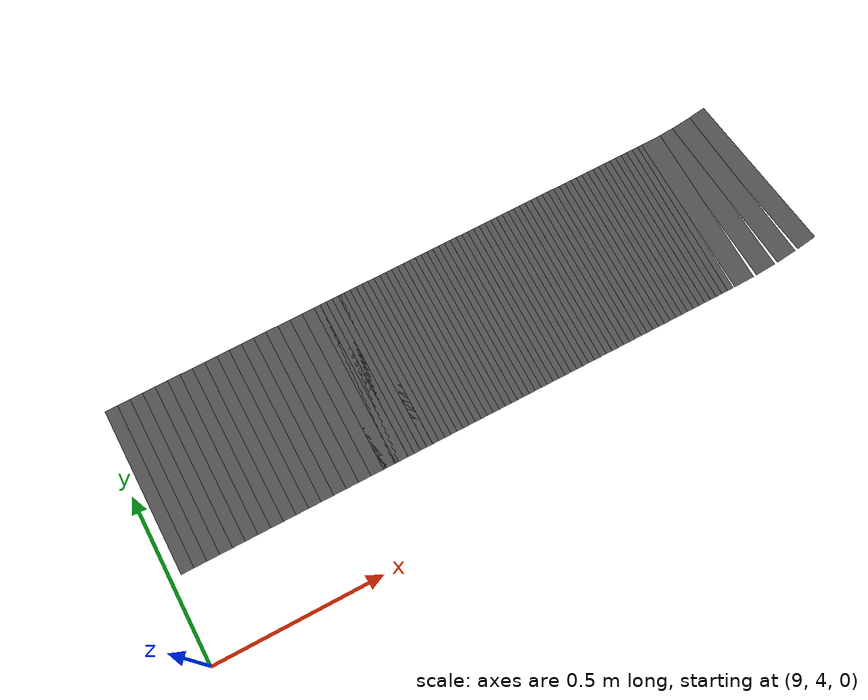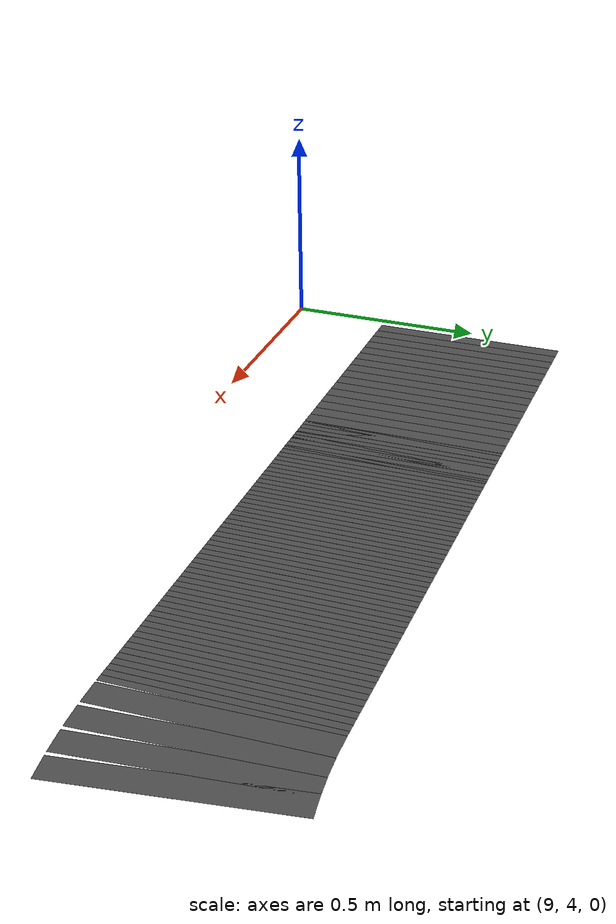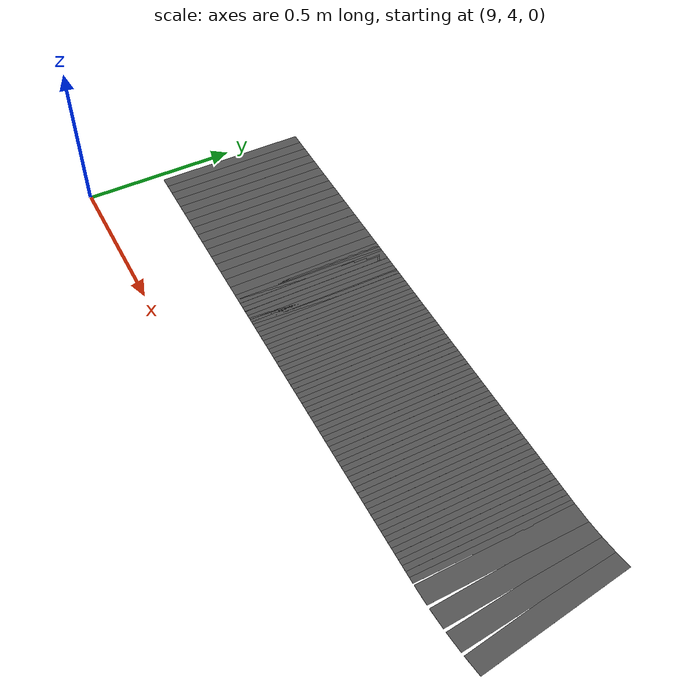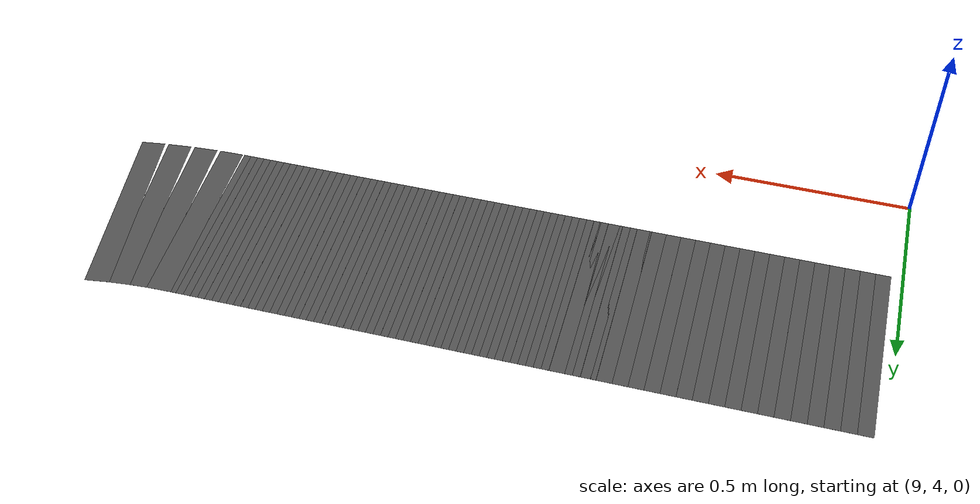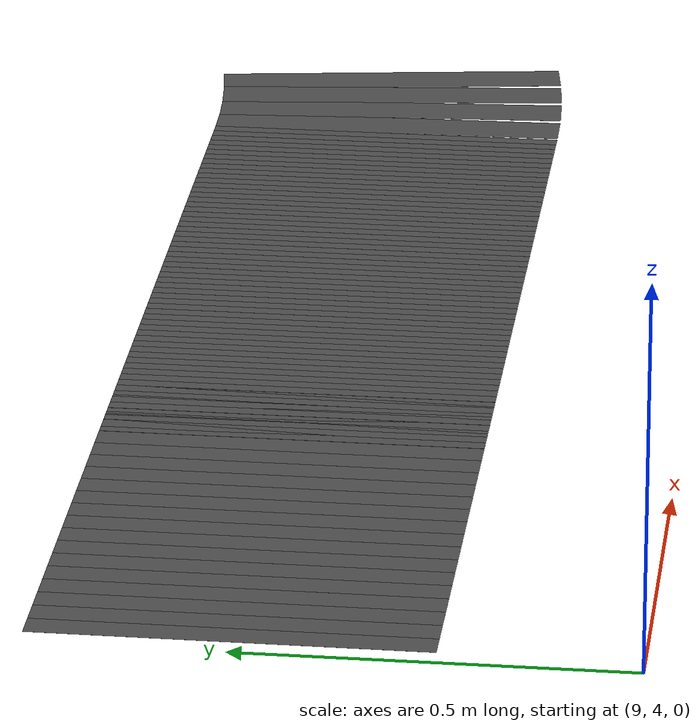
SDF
<sdf version="1.7">
 <model name="default">
  <model name="road_seg_0">
   <static>1</static>
   <link name="road_link">
    <visual name="road_visual">
     <geometry><box><size>0.018637 0.5 0.0001</size></box></geometry>
     <material>
      <script>
       <uri>model://road_material/materials/scripts</uri>
       <uri>model://road_material/materials/textures</uri>
       <name>MyRoad/Road</name>
      </script>
     </material>
    </visual>
    <collision name="road_collision"><geometry><box><size>0.018637 0.5 0.0001</size></box></geometry></collision>
   </link>
   <pose>9.63494 4.5 0 0 -0 0</pose>
  </model>
  <model name="road_seg_1">
   <static>1</static>
   <link name="road_link">
    <visual name="road_visual">
     <geometry><box><size>0.018637 0.5 0.0001</size></box></geometry>
     <material>
      <script>
       <uri>model://road_material/materials/scripts</uri>
       <uri>model://road_material/materials/textures</uri>
       <name>MyRoad/Road</name>
      </script>
     </material>
    </visual>
    <collision name="road_collision"><geometry><box><size>0.018637 0.5 0.0001</size></box></geometry></collision>
   </link>
   <pose>9.65358 4.5 0 0 -0 0</pose>
  </model>
  <model name="road_seg_2">
   <static>1</static>
   <link name="road_link">
    <visual name="road_visual">
     <geometry><box><size>0.018637 0.5 0.0001</size></box></geometry>
     <material>
      <script>
       <uri>model://road_material/materials/scripts</uri>
       <uri>model://road_material/materials/textures</uri>
       <name>MyRoad/Road</name>
      </script>
     </material>
    </visual>
    <collision name="road_collision"><geometry><box><size>0.018637 0.5 0.0001</size></box></geometry></collision>
   </link>
   <pose>9.67222 4.5 0 0 -0 0</pose>
  </model>
  <model name="road_seg_3">
   <static>1</static>
   <link name="road_link">
    <visual name="road_visual">
     <geometry><box><size>0.018637 0.5 0.0001</size></box></geometry>
     <material>
      <script>
       <uri>model://road_material/materials/scripts</uri>
       <uri>model://road_material/materials/textures</uri>
       <name>MyRoad/Road</name>
      </script>
     </material>
    </visual>
    <collision name="road_collision"><geometry><box><size>0.018637 0.5 0.0001</size></box></geometry></collision>
   </link>
   <pose>9.69085 4.5 0 0 -0 0</pose>
  </model>
  <model name="road_seg_4">
   <static>1</static>
   <link name="road_link">
    <visual name="road_visual">
     <geometry><box><size>0.018637 0.5 0.0001</size></box></geometry>
     <material>
      <script>
       <uri>model://road_material/materials/scripts</uri>
       <uri>model://road_material/materials/textures</uri>
       <name>MyRoad/Road</name>
      </script>
     </material>
    </visual>
    <collision name="road_collision"><geometry><box><size>0.018637 0.5 0.0001</size></box></geometry></collision>
   </link>
   <pose>9.70949 4.5 0 0 -0 0</pose>
  </model>
  <model name="road_seg_5">
   <static>1</static>
   <link name="road_link">
    <visual name="road_visual">
     <geometry><box><size>0.018637 0.5 0.0001</size></box></geometry>
     <material>
      <script>
       <uri>model://road_material/materials/scripts</uri>
       <uri>model://road_material/materials/textures</uri>
       <name>MyRoad/Road</name>
      </script>
     </material>
    </visual>
    <collision name="road_collision"><geometry><box><size>0.018637 0.5 0.0001</size></box></geometry></collision>
   </link>
   <pose>9.72813 4.5 0 0 -0 0</pose>
  </model>
  <model name="road_seg_6">
   <static>1</static>
   <link name="road_link">
    <visual name="road_visual">
     <geometry><box><size>0.018637 0.5 0.0001</size></box></geometry>
     <material>
      <script>
       <uri>model://road_material/materials/scripts</uri>
       <uri>model://road_material/materials/textures</uri>
       <name>MyRoad/Road</name>
      </script>
     </material>
    </visual>
    <collision name="road_collision"><geometry><box><size>0.018637 0.5 0.0001</size></box></geometry></collision>
   </link>
   <pose>9.74677 4.5 0 0 -0 0</pose>
  </model>
  <model name="road_seg_7">
   <static>1</static>
   <link name="road_link">
    <visual name="road_visual">
     <geometry><box><size>0.018637 0.5 0.0001</size></box></geometry>
     <material>
      <script>
       <uri>model://road_material/materials/scripts</uri>
       <uri>model://road_material/materials/textures</uri>
       <name>MyRoad/Road</name>
      </script>
     </material>
    </visual>
    <collision name="road_collision"><geometry><box><size>0.018637 0.5 0.0001</size></box></geometry></collision>
   </link>
   <pose>9.7654 4.5 0 0 -0 0</pose>
  </model>
  <model name="road_seg_8">
   <static>1</static>
   <link name="road_link">
    <visual name="road_visual">
     <geometry><box><size>0.018637 0.5 0.0001</size></box></geometry>
     <material>
      <script>
       <uri>model://road_material/materials/scripts</uri>
       <uri>model://road_material/materials/textures</uri>
       <name>MyRoad/Road</name>
      </script>
     </material>
    </visual>
    <collision name="road_collision"><geometry><box><size>0.018637 0.5 0.0001</size></box></geometry></collision>
   </link>
   <pose>9.78404 4.5 0 0 -0 0</pose>
  </model>
  <model name="road_seg_9">
   <static>1</static>
   <link name="road_link">
    <visual name="road_visual">
     <geometry><box><size>0.018637 0.5 0.0001</size></box></geometry>
     <material>
      <script>
       <uri>model://road_material/materials/scripts</uri>
       <uri>model://road_material/materials/textures</uri>
       <name>MyRoad/Road</name>
      </script>
     </material>
    </visual>
    <collision name="road_collision"><geometry><box><size>0.018637 0.5 0.0001</size></box></geometry></collision>
   </link>
   <pose>9.80268 4.5 0 0 -0 0</pose>
  </model>
  <model name="road_seg_10">
   <static>1</static>
   <link name="road_link">
    <visual name="road_visual">
     <geometry><box><size>0.018637 0.5 0.0001</size></box></geometry>
     <material>
      <script>
       <uri>model://road_material/materials/scripts</uri>
       <uri>model://road_material/materials/textures</uri>
       <name>MyRoad/Road</name>
      </script>
     </material>
    </visual>
    <collision name="road_collision"><geometry><box><size>0.018637 0.5 0.0001</size></box></geometry></collision>
   </link>
   <pose>9.82132 4.5 0 0 -0 0</pose>
  </model>
  <model name="road_seg_11">
   <static>1</static>
   <link name="road_link">
    <visual name="road_visual">
     <geometry><box><size>0.018637 0.5 0.0001</size></box></geometry>
     <material>
      <script>
       <uri>model://road_material/materials/scripts</uri>
       <uri>model://road_material/materials/textures</uri>
       <name>MyRoad/Road</name>
      </script>
     </material>
    </visual>
    <collision name="road_collision"><geometry><box><size>0.018637 0.5 0.0001</size></box></geometry></collision>
   </link>
   <pose>9.83995 4.5 0 0 -0 0</pose>
  </model>
  <model name="road_seg_12">
   <static>1</static>
   <link name="road_link">
    <visual name="road_visual">
     <geometry><box><size>0.018637 0.5 0.0001</size></box></geometry>
     <material>
      <script>
       <uri>model://road_material/materials/scripts</uri>
       <uri>model://road_material/materials/textures</uri>
       <name>MyRoad/Road</name>
      </script>
     </material>
    </visual>
    <collision name="road_collision"><geometry><box><size>0.018637 0.5 0.0001</size></box></geometry></collision>
   </link>
   <pose>9.85859 4.5 0 0 -0 0</pose>
  </model>
  <model name="road_seg_13">
   <static>1</static>
   <link name="road_link">
    <visual name="road_visual">
     <geometry><box><size>0.018637 0.5 0.0001</size></box></geometry>
     <material>
      <script>
       <uri>model://road_material/materials/scripts</uri>
       <uri>model://road_material/materials/textures</uri>
       <name>MyRoad/Road</name>
      </script>
     </material>
    </visual>
    <collision name="road_collision"><geometry><box><size>0.018637 0.5 0.0001</size></box></geometry></collision>
   </link>
   <pose>9.87723 4.5 0 0 -0 0</pose>
  </model>
  <model name="road_seg_14">
   <static>1</static>
   <link name="road_link">
    <visual name="road_visual">
     <geometry><box><size>0.018637 0.5 0.0001</size></box></geometry>
     <material>
      <script>
       <uri>model://road_material/materials/scripts</uri>
       <uri>model://road_material/materials/textures</uri>
       <name>MyRoad/Road</name>
      </script>
     </material>
    </visual>
    <collision name="road_collision"><geometry><box><size>0.018637 0.5 0.0001</size></box></geometry></collision>
   </link>
   <pose>9.89587 4.5 0 0 -0 0</pose>
  </model>
  <model name="road_seg_15">
   <static>1</static>
   <link name="road_link">
    <visual name="road_visual">
     <geometry><box><size>0.018637 0.5 0.0001</size></box></geometry>
     <material>
      <script>
       <uri>model://road_material/materials/scripts</uri>
       <uri>model://road_material/materials/textures</uri>
       <name>MyRoad/Road</name>
      </script>
     </material>
    </visual>
    <collision name="road_collision"><geometry><box><size>0.018637 0.5 0.0001</size></box></geometry></collision>
   </link>
   <pose>9.9145 4.5 0 0 -0 0</pose>
  </model>
  <model name="road_seg_16">
   <static>1</static>
   <link name="road_link">
    <visual name="road_visual">
     <geometry><box><size>0.018637 0.5 0.0001</size></box></geometry>
     <material>
      <script>
       <uri>model://road_material/materials/scripts</uri>
       <uri>model://road_material/materials/textures</uri>
       <name>MyRoad/Road</name>
      </script>
     </material>
    </visual>
    <collision name="road_collision"><geometry><box><size>0.018637 0.5 0.0001</size></box></geometry></collision>
   </link>
   <pose>9.93314 4.5 0 0 -0 0</pose>
  </model>
  <model name="road_seg_17">
   <static>1</static>
   <link name="road_link">
    <visual name="road_visual">
     <geometry><box><size>0.018637 0.5 0.0001</size></box></geometry>
     <material>
      <script>
       <uri>model://road_material/materials/scripts</uri>
       <uri>model://road_material/materials/textures</uri>
       <name>MyRoad/Road</name>
      </script>
     </material>
    </visual>
    <collision name="road_collision"><geometry><box><size>0.018637 0.5 0.0001</size></box></geometry></collision>
   </link>
   <pose>9.95178 4.5 0 0 -0 0</pose>
  </model>
  <model name="road_seg_18">
   <static>1</static>
   <link name="road_link">
    <visual name="road_visual">
     <geometry><box><size>0.018637 0.5 0.0001</size></box></geometry>
     <material>
      <script>
       <uri>model://road_material/materials/scripts</uri>
       <uri>model://road_material/materials/textures</uri>
       <name>MyRoad/Road</name>
      </script>
     </material>
    </visual>
    <collision name="road_collision"><geometry><box><size>0.018637 0.5 0.0001</size></box></geometry></collision>
   </link>
   <pose>9.97042 4.5 0 0 -0 0</pose>
  </model>
  <model name="road_seg_19">
   <static>1</static>
   <link name="road_link">
    <visual name="road_visual">
     <geometry><box><size>0.018637 0.5 0.0001</size></box></geometry>
     <material>
      <script>
       <uri>model://road_material/materials/scripts</uri>
       <uri>model://road_material/materials/textures</uri>
       <name>MyRoad/Road</name>
      </script>
     </material>
    </visual>
    <collision name="road_collision"><geometry><box><size>0.018637 0.5 0.0001</size></box></geometry></collision>
   </link>
   <pose>9.98905 4.5 0 0 -0 0</pose>
  </model>
  <model name="road_seg_20">
   <static>1</static>
   <link name="road_link">
    <visual name="road_visual">
     <geometry><box><size>0.018637 0.5 0.0001</size></box></geometry>
     <material>
      <script>
       <uri>model://road_material/materials/scripts</uri>
       <uri>model://road_material/materials/textures</uri>
       <name>MyRoad/Road</name>
      </script>
     </material>
    </visual>
    <collision name="road_collision"><geometry><box><size>0.018637 0.5 0.0001</size></box></geometry></collision>
   </link>
   <pose>10.0077 4.5 0 0 -0 0</pose>
  </model>
  <model name="road_seg_21">
   <static>1</static>
   <link name="road_link">
    <visual name="road_visual">
     <geometry><box><size>0.018637 0.5 0.0001</size></box></geometry>
     <material>
      <script>
       <uri>model://road_material/materials/scripts</uri>
       <uri>model://road_material/materials/textures</uri>
       <name>MyRoad/Road</name>
      </script>
     </material>
    </visual>
    <collision name="road_collision"><geometry><box><size>0.018637 0.5 0.0001</size></box></geometry></collision>
   </link>
   <pose>10.0263 4.5 0 0 -0 0</pose>
  </model>
  <model name="road_seg_22">
   <static>1</static>
   <link name="road_link">
    <visual name="road_visual">
     <geometry><box><size>0.018637 0.5 0.0001</size></box></geometry>
     <material>
      <script>
       <uri>model://road_material/materials/scripts</uri>
       <uri>model://road_material/materials/textures</uri>
       <name>MyRoad/Road</name>
      </script>
     </material>
    </visual>
    <collision name="road_collision"><geometry><box><size>0.018637 0.5 0.0001</size></box></geometry></collision>
   </link>
   <pose>10.045 4.5 0 0 -0 0</pose>
  </model>
  <model name="road_seg_23">
   <static>1</static>
   <link name="road_link">
    <visual name="road_visual">
     <geometry><box><size>0.018637 0.5 0.0001</size></box></geometry>
     <material>
      <script>
       <uri>model://road_material/materials/scripts</uri>
       <uri>model://road_material/materials/textures</uri>
       <name>MyRoad/Road</name>
      </script>
     </material>
    </visual>
    <collision name="road_collision"><geometry><box><size>0.018637 0.5 0.0001</size></box></geometry></collision>
   </link>
   <pose>10.0636 4.5 0 0 -0 0</pose>
  </model>
  <model name="road_seg_24">
   <static>1</static>
   <link name="road_link">
    <visual name="road_visual">
     <geometry><box><size>0.018637 0.5 0.0001</size></box></geometry>
     <material>
      <script>
       <uri>model://road_material/materials/scripts</uri>
       <uri>model://road_material/materials/textures</uri>
       <name>MyRoad/Road</name>
      </script>
     </material>
    </visual>
    <collision name="road_collision"><geometry><box><size>0.018637 0.5 0.0001</size></box></geometry></collision>
   </link>
   <pose>10.0822 4.5 0 0 -0 0</pose>
  </model>
  <model name="road_seg_25">
   <static>1</static>
   <link name="road_link">
    <visual name="road_visual">
     <geometry><box><size>0.018637 0.5 0.0001</size></box></geometry>
     <material>
      <script>
       <uri>model://road_material/materials/scripts</uri>
       <uri>model://road_material/materials/textures</uri>
       <name>MyRoad/Road</name>
      </script>
     </material>
    </visual>
    <collision name="road_collision"><geometry><box><size>0.018637 0.5 0.0001</size></box></geometry></collision>
   </link>
   <pose>10.1009 4.5 0 0 -0 0</pose>
  </model>
  <model name="road_seg_26">
   <static>1</static>
   <link name="road_link">
    <visual name="road_visual">
     <geometry><box><size>0.018637 0.5 0.0001</size></box></geometry>
     <material>
      <script>
       <uri>model://road_material/materials/scripts</uri>
       <uri>model://road_material/materials/textures</uri>
       <name>MyRoad/Road</name>
      </script>
     </material>
    </visual>
    <collision name="road_collision"><geometry><box><size>0.018637 0.5 0.0001</size></box></geometry></collision>
   </link>
   <pose>10.1195 4.5 0 0 -0 0</pose>
  </model>
  <model name="road_seg_27">
   <static>1</static>
   <link name="road_link">
    <visual name="road_visual">
     <geometry><box><size>0.018637 0.5 0.0001</size></box></geometry>
     <material>
      <script>
       <uri>model://road_material/materials/scripts</uri>
       <uri>model://road_material/materials/textures</uri>
       <name>MyRoad/Road</name>
      </script>
     </material>
    </visual>
    <collision name="road_collision"><geometry><box><size>0.018637 0.5 0.0001</size></box></geometry></collision>
   </link>
   <pose>10.1382 4.5 0 0 -0 0</pose>
  </model>
  <model name="road_seg_28">
   <static>1</static>
   <link name="road_link">
    <visual name="road_visual">
     <geometry><box><size>0.018637 0.5 0.0001</size></box></geometry>
     <material>
      <script>
       <uri>model://road_material/materials/scripts</uri>
       <uri>model://road_material/materials/textures</uri>
       <name>MyRoad/Road</name>
      </script>
     </material>
    </visual>
    <collision name="road_collision"><geometry><box><size>0.018637 0.5 0.0001</size></box></geometry></collision>
   </link>
   <pose>10.1568 4.5 0 0 -0 0</pose>
  </model>
  <model name="road_seg_29">
   <static>1</static>
   <link name="road_link">
    <visual name="road_visual">
     <geometry><box><size>0.018637 0.5 0.0001</size></box></geometry>
     <material>
      <script>
       <uri>model://road_material/materials/scripts</uri>
       <uri>model://road_material/materials/textures</uri>
       <name>MyRoad/Road</name>
      </script>
     </material>
    </visual>
    <collision name="road_collision"><geometry><box><size>0.018637 0.5 0.0001</size></box></geometry></collision>
   </link>
   <pose>10.1754 4.5 0 0 -0 0</pose>
  </model>
  <model name="road_seg_30">
   <static>1</static>
   <link name="road_link">
    <visual name="road_visual">
     <geometry><box><size>0.018637 0.5 0.0001</size></box></geometry>
     <material>
      <script>
       <uri>model://road_material/materials/scripts</uri>
       <uri>model://road_material/materials/textures</uri>
       <name>MyRoad/Road</name>
      </script>
     </material>
    </visual>
    <collision name="road_collision"><geometry><box><size>0.018637 0.5 0.0001</size></box></geometry></collision>
   </link>
   <pose>10.1941 4.5 0 0 -0 0</pose>
  </model>
  <model name="road_seg_31">
   <static>1</static>
   <link name="road_link">
    <visual name="road_visual">
     <geometry><box><size>0.018637 0.5 0.0001</size></box></geometry>
     <material>
      <script>
       <uri>model://road_material/materials/scripts</uri>
       <uri>model://road_material/materials/textures</uri>
       <name>MyRoad/Road</name>
      </script>
     </material>
    </visual>
    <collision name="road_collision"><geometry><box><size>0.018637 0.5 0.0001</size></box></geometry></collision>
   </link>
   <pose>10.2127 4.5 0 0 -0 0</pose>
  </model>
  <model name="road_seg_32">
   <static>1</static>
   <link name="road_link">
    <visual name="road_visual">
     <geometry><box><size>0.018637 0.5 0.0001</size></box></geometry>
     <material>
      <script>
       <uri>model://road_material/materials/scripts</uri>
       <uri>model://road_material/materials/textures</uri>
       <name>MyRoad/Road</name>
      </script>
     </material>
    </visual>
    <collision name="road_collision"><geometry><box><size>0.018637 0.5 0.0001</size></box></geometry></collision>
   </link>
   <pose>10.2313 4.5 0 0 -0 0</pose>
  </model>
  <model name="road_seg_33">
   <static>1</static>
   <link name="road_link">
    <visual name="road_visual">
     <geometry><box><size>0.018637 0.5 0.0001</size></box></geometry>
     <material>
      <script>
       <uri>model://road_material/materials/scripts</uri>
       <uri>model://road_material/materials/textures</uri>
       <name>MyRoad/Road</name>
      </script>
     </material>
    </visual>
    <collision name="road_collision"><geometry><box><size>0.018637 0.5 0.0001</size></box></geometry></collision>
   </link>
   <pose>10.25 4.5 0 0 -0 0</pose>
  </model>
  <model name="road_seg_34">
   <static>1</static>
   <link name="road_link">
    <visual name="road_visual">
     <geometry><box><size>0.018637 0.5 0.0001</size></box></geometry>
     <material>
      <script>
       <uri>model://road_material/materials/scripts</uri>
       <uri>model://road_material/materials/textures</uri>
       <name>MyRoad/Road</name>
      </script>
     </material>
    </visual>
    <collision name="road_collision"><geometry><box><size>0.018637 0.5 0.0001</size></box></geometry></collision>
   </link>
   <pose>10.2686 4.5 0 0 -0 0</pose>
  </model>
  <model name="road_seg_35">
   <static>1</static>
   <link name="road_link">
    <visual name="road_visual">
     <geometry><box><size>0.018637 0.5 0.0001</size></box></geometry>
     <material>
      <script>
       <uri>model://road_material/materials/scripts</uri>
       <uri>model://road_material/materials/textures</uri>
       <name>MyRoad/Road</name>
      </script>
     </material>
    </visual>
    <collision name="road_collision"><geometry><box><size>0.018637 0.5 0.0001</size></box></geometry></collision>
   </link>
   <pose>10.2873 4.5 0 0 -0 0</pose>
  </model>
  <model name="road_seg_36">
   <static>1</static>
   <link name="road_link">
    <visual name="road_visual">
     <geometry><box><size>0.018637 0.5 0.0001</size></box></geometry>
     <material>
      <script>
       <uri>model://road_material/materials/scripts</uri>
       <uri>model://road_material/materials/textures</uri>
       <name>MyRoad/Road</name>
      </script>
     </material>
    </visual>
    <collision name="road_collision"><geometry><box><size>0.018637 0.5 0.0001</size></box></geometry></collision>
   </link>
   <pose>10.3059 4.5 0 0 -0 0</pose>
  </model>
  <model name="road_seg_37">
   <static>1</static>
   <link name="road_link">
    <visual name="road_visual">
     <geometry><box><size>0.018637 0.5 0.0001</size></box></geometry>
     <material>
      <script>
       <uri>model://road_material/materials/scripts</uri>
       <uri>model://road_material/materials/textures</uri>
       <name>MyRoad/Road</name>
      </script>
     </material>
    </visual>
    <collision name="road_collision"><geometry><box><size>0.018637 0.5 0.0001</size></box></geometry></collision>
   </link>
   <pose>10.3245 4.5 0 0 -0 0</pose>
  </model>
  <model name="road_seg_38">
   <static>1</static>
   <link name="road_link">
    <visual name="road_visual">
     <geometry><box><size>0.018637 0.5 0.0001</size></box></geometry>
     <material>
      <script>
       <uri>model://road_material/materials/scripts</uri>
       <uri>model://road_material/materials/textures</uri>
       <name>MyRoad/Road</name>
      </script>
     </material>
    </visual>
    <collision name="road_collision"><geometry><box><size>0.018637 0.5 0.0001</size></box></geometry></collision>
   </link>
   <pose>10.3432 4.5 0 0 -0 0</pose>
  </model>
  <model name="road_seg_39">
   <static>1</static>
   <link name="road_link">
    <visual name="road_visual">
     <geometry><box><size>0.018637 0.5 0.0001</size></box></geometry>
     <material>
      <script>
       <uri>model://road_material/materials/scripts</uri>
       <uri>model://road_material/materials/textures</uri>
       <name>MyRoad/Road</name>
      </script>
     </material>
    </visual>
    <collision name="road_collision"><geometry><box><size>0.018637 0.5 0.0001</size></box></geometry></collision>
   </link>
   <pose>10.3618 4.5 0 0 -0 0</pose>
  </model>
  <model name="road_seg_40">
   <static>1</static>
   <link name="road_link">
    <visual name="road_visual">
     <geometry><box><size>0.018637 0.5 0.0001</size></box></geometry>
     <material>
      <script>
       <uri>model://road_material/materials/scripts</uri>
       <uri>model://road_material/materials/textures</uri>
       <name>MyRoad/Road</name>
      </script>
     </material>
    </visual>
    <collision name="road_collision"><geometry><box><size>0.018637 0.5 0.0001</size></box></geometry></collision>
   </link>
   <pose>10.3804 4.5 0 0 -0 0</pose>
  </model>
  <model name="road_seg_41">
   <static>1</static>
   <link name="road_link">
    <visual name="road_visual">
     <geometry><box><size>0.018637 0.5 0.0001</size></box></geometry>
     <material>
      <script>
       <uri>model://road_material/materials/scripts</uri>
       <uri>model://road_material/materials/textures</uri>
       <name>MyRoad/Road</name>
      </script>
     </material>
    </visual>
    <collision name="road_collision"><geometry><box><size>0.018637 0.5 0.0001</size></box></geometry></collision>
   </link>
   <pose>10.3991 4.5 0 0 -0 0</pose>
  </model>
  <model name="road_seg_42">
   <static>1</static>
   <link name="road_link">
    <visual name="road_visual">
     <geometry><box><size>0.018637 0.5 0.0001</size></box></geometry>
     <material>
      <script>
       <uri>model://road_material/materials/scripts</uri>
       <uri>model://road_material/materials/textures</uri>
       <name>MyRoad/Road</name>
      </script>
     </material>
    </visual>
    <collision name="road_collision"><geometry><box><size>0.018637 0.5 0.0001</size></box></geometry></collision>
   </link>
   <pose>10.4177 4.5 0 0 -0 0</pose>
  </model>
  <model name="road_seg_43">
   <static>1</static>
   <link name="road_link">
    <visual name="road_visual">
     <geometry><box><size>0.018637 0.5 0.0001</size></box></geometry>
     <material>
      <script>
       <uri>model://road_material/materials/scripts</uri>
       <uri>model://road_material/materials/textures</uri>
       <name>MyRoad/Road</name>
      </script>
     </material>
    </visual>
    <collision name="road_collision"><geometry><box><size>0.018637 0.5 0.0001</size></box></geometry></collision>
   </link>
   <pose>10.4364 4.5 0 0 -0 0</pose>
  </model>
  <model name="road_seg_44">
   <static>1</static>
   <link name="road_link">
    <visual name="road_visual">
     <geometry><box><size>0.018637 0.5 0.0001</size></box></geometry>
     <material>
      <script>
       <uri>model://road_material/materials/scripts</uri>
       <uri>model://road_material/materials/textures</uri>
       <name>MyRoad/Road</name>
      </script>
     </material>
    </visual>
    <collision name="road_collision"><geometry><box><size>0.018637 0.5 0.0001</size></box></geometry></collision>
   </link>
   <pose>10.455 4.5 0 0 -0 0</pose>
  </model>
  <model name="road_seg_45">
   <static>1</static>
   <link name="road_link">
    <visual name="road_visual">
     <geometry><box><size>0.018637 0.5 0.0001</size></box></geometry>
     <material>
      <script>
       <uri>model://road_material/materials/scripts</uri>
       <uri>model://road_material/materials/textures</uri>
       <name>MyRoad/Road</name>
      </script>
     </material>
    </visual>
    <collision name="road_collision"><geometry><box><size>0.018637 0.5 0.0001</size></box></geometry></collision>
   </link>
   <pose>10.4736 4.5 0 0 -0 0</pose>
  </model>
  <model name="road_seg_46">
   <static>1</static>
   <link name="road_link">
    <visual name="road_visual">
     <geometry><box><size>0.018637 0.5 0.0001</size></box></geometry>
     <material>
      <script>
       <uri>model://road_material/materials/scripts</uri>
       <uri>model://road_material/materials/textures</uri>
       <name>MyRoad/Road</name>
      </script>
     </material>
    </visual>
    <collision name="road_collision"><geometry><box><size>0.018637 0.5 0.0001</size></box></geometry></collision>
   </link>
   <pose>10.4923 4.5 0 0 -0 0</pose>
  </model>
  <model name="road_seg_47">
   <static>1</static>
   <link name="road_link">
    <visual name="road_visual">
     <geometry><box><size>0.018637 0.5 0.0001</size></box></geometry>
     <material>
      <script>
       <uri>model://road_material/materials/scripts</uri>
       <uri>model://road_material/materials/textures</uri>
       <name>MyRoad/Road</name>
      </script>
     </material>
    </visual>
    <collision name="road_collision"><geometry><box><size>0.018637 0.5 0.0001</size></box></geometry></collision>
   </link>
   <pose>10.5109 4.5 0 0 -0 0</pose>
  </model>
  <model name="road_seg_48">
   <static>1</static>
   <link name="road_link">
    <visual name="road_visual">
     <geometry><box><size>0.018637 0.5 0.0001</size></box></geometry>
     <material>
      <script>
       <uri>model://road_material/materials/scripts</uri>
       <uri>model://road_material/materials/textures</uri>
       <name>MyRoad/Road</name>
      </script>
     </material>
    </visual>
    <collision name="road_collision"><geometry><box><size>0.018637 0.5 0.0001</size></box></geometry></collision>
   </link>
   <pose>10.5295 4.5 0 0 -0 0</pose>
  </model>
  <model name="road_seg_49">
   <static>1</static>
   <link name="road_link">
    <visual name="road_visual">
     <geometry><box><size>0.018637 0.5 0.0001</size></box></geometry>
     <material>
      <script>
       <uri>model://road_material/materials/scripts</uri>
       <uri>model://road_material/materials/textures</uri>
       <name>MyRoad/Road</name>
      </script>
     </material>
    </visual>
    <collision name="road_collision"><geometry><box><size>0.018637 0.5 0.0001</size></box></geometry></collision>
   </link>
   <pose>10.5482 4.5 0 0 -0 0</pose>
  </model>
  <model name="road_seg_50">
   <static>1</static>
   <link name="road_link">
    <visual name="road_visual">
     <geometry><box><size>0.018637 0.5 0.0001</size></box></geometry>
     <material>
      <script>
       <uri>model://road_material/materials/scripts</uri>
       <uri>model://road_material/materials/textures</uri>
       <name>MyRoad/Road</name>
      </script>
     </material>
    </visual>
    <collision name="road_collision"><geometry><box><size>0.018637 0.5 0.0001</size></box></geometry></collision>
   </link>
   <pose>10.5668 4.5 0 0 -0 0</pose>
  </model>
  <model name="road_seg_51">
   <static>1</static>
   <link name="road_link">
    <visual name="road_visual">
     <geometry><box><size>0.018637 0.5 0.0001</size></box></geometry>
     <material>
      <script>
       <uri>model://road_material/materials/scripts</uri>
       <uri>model://road_material/materials/textures</uri>
       <name>MyRoad/Road</name>
      </script>
     </material>
    </visual>
    <collision name="road_collision"><geometry><box><size>0.018637 0.5 0.0001</size></box></geometry></collision>
   </link>
   <pose>10.5855 4.5 0 0 -0 0</pose>
  </model>
  <model name="road_seg_52">
   <static>1</static>
   <link name="road_link">
    <visual name="road_visual">
     <geometry><box><size>0.018637 0.5 0.0001</size></box></geometry>
     <material>
      <script>
       <uri>model://road_material/materials/scripts</uri>
       <uri>model://road_material/materials/textures</uri>
       <name>MyRoad/Road</name>
      </script>
     </material>
    </visual>
    <collision name="road_collision"><geometry><box><size>0.018637 0.5 0.0001</size></box></geometry></collision>
   </link>
   <pose>10.6041 4.5 0 0 -0 0</pose>
  </model>
  <model name="road_seg_53">
   <static>1</static>
   <link name="road_link">
    <visual name="road_visual">
     <geometry><box><size>0.018637 0.5 0.0001</size></box></geometry>
     <material>
      <script>
       <uri>model://road_material/materials/scripts</uri>
       <uri>model://road_material/materials/textures</uri>
       <name>MyRoad/Road</name>
      </script>
     </material>
    </visual>
    <collision name="road_collision"><geometry><box><size>0.018637 0.5 0.0001</size></box></geometry></collision>
   </link>
   <pose>10.6227 4.5 0 0 -0 0</pose>
  </model>
  <model name="road_seg_54">
   <static>1</static>
   <link name="road_link">
    <visual name="road_visual">
     <geometry><box><size>0.018637 0.5 0.0001</size></box></geometry>
     <material>
      <script>
       <uri>model://road_material/materials/scripts</uri>
       <uri>model://road_material/materials/textures</uri>
       <name>MyRoad/Road</name>
      </script>
     </material>
    </visual>
    <collision name="road_collision"><geometry><box><size>0.018637 0.5 0.0001</size></box></geometry></collision>
   </link>
   <pose>10.6414 4.5 0 0 -0 0</pose>
  </model>
  <model name="road_seg_55">
   <static>1</static>
   <link name="road_link">
    <visual name="road_visual">
     <geometry><box><size>0.018637 0.5 0.0001</size></box></geometry>
     <material>
      <script>
       <uri>model://road_material/materials/scripts</uri>
       <uri>model://road_material/materials/textures</uri>
       <name>MyRoad/Road</name>
      </script>
     </material>
    </visual>
    <collision name="road_collision"><geometry><box><size>0.018637 0.5 0.0001</size></box></geometry></collision>
   </link>
   <pose>10.66 4.5 0 0 -0 0</pose>
  </model>
  <model name="road_seg_56">
   <static>1</static>
   <link name="road_link">
    <visual name="road_visual">
     <geometry><box><size>0.018637 0.5 0.0001</size></box></geometry>
     <material>
      <script>
       <uri>model://road_material/materials/scripts</uri>
       <uri>model://road_material/materials/textures</uri>
       <name>MyRoad/Road</name>
      </script>
     </material>
    </visual>
    <collision name="road_collision"><geometry><box><size>0.018637 0.5 0.0001</size></box></geometry></collision>
   </link>
   <pose>10.6786 4.5 0 0 -0 0</pose>
  </model>
  <model name="road_seg_57">
   <static>1</static>
   <link name="road_link">
    <visual name="road_visual">
     <geometry><box><size>0.018637 0.5 0.0001</size></box></geometry>
     <material>
      <script>
       <uri>model://road_material/materials/scripts</uri>
       <uri>model://road_material/materials/textures</uri>
       <name>MyRoad/Road</name>
      </script>
     </material>
    </visual>
    <collision name="road_collision"><geometry><box><size>0.018637 0.5 0.0001</size></box></geometry></collision>
   </link>
   <pose>10.6973 4.5 0 0 -0 0</pose>
  </model>
  <model name="road_seg_58">
   <static>1</static>
   <link name="road_link">
    <visual name="road_visual">
     <geometry><box><size>0.018637 0.5 0.0001</size></box></geometry>
     <material>
      <script>
       <uri>model://road_material/materials/scripts</uri>
       <uri>model://road_material/materials/textures</uri>
       <name>MyRoad/Road</name>
      </script>
     </material>
    </visual>
    <collision name="road_collision"><geometry><box><size>0.018637 0.5 0.0001</size></box></geometry></collision>
   </link>
   <pose>10.7159 4.5 0 0 -0 0</pose>
  </model>
  <model name="road_seg_59">
   <static>1</static>
   <link name="road_link">
    <visual name="road_visual">
     <geometry><box><size>0.062632 0.5 0.0001</size></box></geometry>
     <material>
      <script>
       <uri>model://road_material/materials/scripts</uri>
       <uri>model://road_material/materials/textures</uri>
       <name>MyRoad/Road</name>
      </script>
     </material>
    </visual>
    <collision name="road_collision"><geometry><box><size>0.062632 0.5 0.0001</size></box></geometry></collision>
   </link>
   <pose>10.7565 4.50062 0 0 -0 0.019884</pose>
  </model>
  <model name="road_seg_60">
   <static>1</static>
   <link name="road_link">
    <visual name="road_visual">
     <geometry><box><size>0.062632 0.5 0.0001</size></box></geometry>
     <material>
      <script>
       <uri>model://road_material/materials/scripts</uri>
       <uri>model://road_material/materials/textures</uri>
       <name>MyRoad/Road</name>
      </script>
     </material>
    </visual>
    <collision name="road_collision"><geometry><box><size>0.062632 0.5 0.0001</size></box></geometry></collision>
   </link>
   <pose>10.8191 4.50311 0 0 -0 0.059651</pose>
  </model>
  <model name="road_seg_61">
   <static>1</static>
   <link name="road_link">
    <visual name="road_visual">
     <geometry><box><size>0.062632 0.5 0.0001</size></box></geometry>
     <material>
      <script>
       <uri>model://road_material/materials/scripts</uri>
       <uri>model://road_material/materials/textures</uri>
       <name>MyRoad/Road</name>
      </script>
     </material>
    </visual>
    <collision name="road_collision"><geometry><box><size>0.062632 0.5 0.0001</size></box></geometry></collision>
   </link>
   <pose>10.8815 4.50809 0 0 -0 0.099418</pose>
  </model>
  <model name="road_seg_62">
   <static>1</static>
   <link name="road_link">
    <visual name="road_visual">
     <geometry><box><size>0.062632 0.5 0.0001</size></box></geometry>
     <material>
      <script>
       <uri>model://road_material/materials/scripts</uri>
       <uri>model://road_material/materials/textures</uri>
       <name>MyRoad/Road</name>
      </script>
     </material>
    </visual>
    <collision name="road_collision"><geometry><box><size>0.062632 0.5 0.0001</size></box></geometry></collision>
   </link>
   <pose>10.9437 4.51554 0 0 -0 0.139184</pose>
  </model>
  <model name="road_seg_473">
   <static>1</static>
   <link name="road_link">
    <visual name="road_visual">
     <geometry><box><size>0.037275 0.5 0.0001</size></box></geometry>
     <material>
      <script>
       <uri>model://road_material/materials/scripts</uri>
       <uri>model://road_material/materials/textures</uri>
       <name>MyRoad/Road</name>
      </script>
     </material>
    </visual>
    <collision name="road_collision"><geometry><box><size>0.037275 0.5 0.0001</size></box></geometry></collision>
   </link>
   <pose>9.04744 4.5 0 0 -0 0</pose>
  </model>
  <model name="road_seg_474">
   <static>1</static>
   <link name="road_link">
    <visual name="road_visual">
     <geometry><box><size>0.037275 0.5 0.0001</size></box></geometry>
     <material>
      <script>
       <uri>model://road_material/materials/scripts</uri>
       <uri>model://road_material/materials/textures</uri>
       <name>MyRoad/Road</name>
      </script>
     </material>
    </visual>
    <collision name="road_collision"><geometry><box><size>0.037275 0.5 0.0001</size></box></geometry></collision>
   </link>
   <pose>9.08471 4.5 0 0 -0 0</pose>
  </model>
  <model name="road_seg_475">
   <static>1</static>
   <link name="road_link">
    <visual name="road_visual">
     <geometry><box><size>0.037275 0.5 0.0001</size></box></geometry>
     <material>
      <script>
       <uri>model://road_material/materials/scripts</uri>
       <uri>model://road_material/materials/textures</uri>
       <name>MyRoad/Road</name>
      </script>
     </material>
    </visual>
    <collision name="road_collision"><geometry><box><size>0.037275 0.5 0.0001</size></box></geometry></collision>
   </link>
   <pose>9.12199 4.5 0 0 -0 0</pose>
  </model>
  <model name="road_seg_476">
   <static>1</static>
   <link name="road_link">
    <visual name="road_visual">
     <geometry><box><size>0.037275 0.5 0.0001</size></box></geometry>
     <material>
      <script>
       <uri>model://road_material/materials/scripts</uri>
       <uri>model://road_material/materials/textures</uri>
       <name>MyRoad/Road</name>
      </script>
     </material>
    </visual>
    <collision name="road_collision"><geometry><box><size>0.037275 0.5 0.0001</size></box></geometry></collision>
   </link>
   <pose>9.15926 4.5 0 0 -0 0</pose>
  </model>
  <model name="road_seg_477">
   <static>1</static>
   <link name="road_link">
    <visual name="road_visual">
     <geometry><box><size>0.037275 0.5 0.0001</size></box></geometry>
     <material>
      <script>
       <uri>model://road_material/materials/scripts</uri>
       <uri>model://road_material/materials/textures</uri>
       <name>MyRoad/Road</name>
      </script>
     </material>
    </visual>
    <collision name="road_collision"><geometry><box><size>0.037275 0.5 0.0001</size></box></geometry></collision>
   </link>
   <pose>9.19654 4.5 0 0 -0 0</pose>
  </model>
  <model name="road_seg_478">
   <static>1</static>
   <link name="road_link">
    <visual name="road_visual">
     <geometry><box><size>0.037275 0.5 0.0001</size></box></geometry>
     <material>
      <script>
       <uri>model://road_material/materials/scripts</uri>
       <uri>model://road_material/materials/textures</uri>
       <name>MyRoad/Road</name>
      </script>
     </material>
    </visual>
    <collision name="road_collision"><geometry><box><size>0.037275 0.5 0.0001</size></box></geometry></collision>
   </link>
   <pose>9.23381 4.5 0 0 -0 0</pose>
  </model>
  <model name="road_seg_479">
   <static>1</static>
   <link name="road_link">
    <visual name="road_visual">
     <geometry><box><size>0.037275 0.5 0.0001</size></box></geometry>
     <material>
      <script>
       <uri>model://road_material/materials/scripts</uri>
       <uri>model://road_material/materials/textures</uri>
       <name>MyRoad/Road</name>
      </script>
     </material>
    </visual>
    <collision name="road_collision"><geometry><box><size>0.037275 0.5 0.0001</size></box></geometry></collision>
   </link>
   <pose>9.27109 4.5 0 0 -0 0</pose>
  </model>
  <model name="road_seg_480">
   <static>1</static>
   <link name="road_link">
    <visual name="road_visual">
     <geometry><box><size>0.037275 0.5 0.0001</size></box></geometry>
     <material>
      <script>
       <uri>model://road_material/materials/scripts</uri>
       <uri>model://road_material/materials/textures</uri>
       <name>MyRoad/Road</name>
      </script>
     </material>
    </visual>
    <collision name="road_collision"><geometry><box><size>0.037275 0.5 0.0001</size></box></geometry></collision>
   </link>
   <pose>9.30836 4.5 0 0 -0 0</pose>
  </model>
  <model name="road_seg_481">
   <static>1</static>
   <link name="road_link">
    <visual name="road_visual">
     <geometry><box><size>0.037275 0.5 0.0001</size></box></geometry>
     <material>
      <script>
       <uri>model://road_material/materials/scripts</uri>
       <uri>model://road_material/materials/textures</uri>
       <name>MyRoad/Road</name>
      </script>
     </material>
    </visual>
    <collision name="road_collision"><geometry><box><size>0.037275 0.5 0.0001</size></box></geometry></collision>
   </link>
   <pose>9.34564 4.5 0 0 -0 0</pose>
  </model>
  <model name="road_seg_482">
   <static>1</static>
   <link name="road_link">
    <visual name="road_visual">
     <geometry><box><size>0.037275 0.5 0.0001</size></box></geometry>
     <material>
      <script>
       <uri>model://road_material/materials/scripts</uri>
       <uri>model://road_material/materials/textures</uri>
       <name>MyRoad/Road</name>
      </script>
     </material>
    </visual>
    <collision name="road_collision"><geometry><box><size>0.037275 0.5 0.0001</size></box></geometry></collision>
   </link>
   <pose>9.38291 4.5 0 0 -0 0</pose>
  </model>
  <model name="road_seg_483">
   <static>1</static>
   <link name="road_link">
    <visual name="road_visual">
     <geometry><box><size>0.037275 0.5 0.0001</size></box></geometry>
     <material>
      <script>
       <uri>model://road_material/materials/scripts</uri>
       <uri>model://road_material/materials/textures</uri>
       <name>MyRoad/Road</name>
      </script>
     </material>
    </visual>
    <collision name="road_collision"><geometry><box><size>0.037275 0.5 0.0001</size></box></geometry></collision>
   </link>
   <pose>9.42019 4.5 0 0 -0 0</pose>
  </model>
  <model name="road_seg_484">
   <static>1</static>
   <link name="road_link">
    <visual name="road_visual">
     <geometry><box><size>0.037275 0.5 0.0001</size></box></geometry>
     <material>
      <script>
       <uri>model://road_material/materials/scripts</uri>
       <uri>model://road_material/materials/textures</uri>
       <name>MyRoad/Road</name>
      </script>
     </material>
    </visual>
    <collision name="road_collision"><geometry><box><size>0.037275 0.5 0.0001</size></box></geometry></collision>
   </link>
   <pose>9.45746 4.5 0 0 -0 0</pose>
  </model>
  <model name="road_seg_485">
   <static>1</static>
   <link name="road_link">
    <visual name="road_visual">
     <geometry><box><size>0.037275 0.5 0.0001</size></box></geometry>
     <material>
      <script>
       <uri>model://road_material/materials/scripts</uri>
       <uri>model://road_material/materials/textures</uri>
       <name>MyRoad/Road</name>
      </script>
     </material>
    </visual>
    <collision name="road_collision"><geometry><box><size>0.037275 0.5 0.0001</size></box></geometry></collision>
   </link>
   <pose>9.49474 4.5 0 0 -0 0</pose>
  </model>
  <model name="road_seg_486">
   <static>1</static>
   <link name="road_link">
    <visual name="road_visual">
     <geometry><box><size>0.037275 0.5 0.0001</size></box></geometry>
     <material>
      <script>
       <uri>model://road_material/materials/scripts</uri>
       <uri>model://road_material/materials/textures</uri>
       <name>MyRoad/Road</name>
      </script>
     </material>
    </visual>
    <collision name="road_collision"><geometry><box><size>0.037275 0.5 0.0001</size></box></geometry></collision>
   </link>
   <pose>9.53201 4.5 0 0 -0 0</pose>
  </model>
  <model name="road_seg_487">
   <static>1</static>
   <link name="road_link">
    <visual name="road_visual">
     <geometry><box><size>0.037275 0.5 0.0001</size></box></geometry>
     <material>
      <script>
       <uri>model://road_material/materials/scripts</uri>
       <uri>model://road_material/materials/textures</uri>
       <name>MyRoad/Road</name>
      </script>
     </material>
    </visual>
    <collision name="road_collision"><geometry><box><size>0.037275 0.5 0.0001</size></box></geometry></collision>
   </link>
   <pose>9.56929 4.5 0 0 -0 0</pose>
  </model>
  <model name="road_seg_488">
   <static>1</static>
   <link name="road_link">
    <visual name="road_visual">
     <geometry><box><size>0.037275 0.5 0.0001</size></box></geometry>
     <material>
      <script>
       <uri>model://road_material/materials/scripts</uri>
       <uri>model://road_material/materials/textures</uri>
       <name>MyRoad/Road</name>
      </script>
     </material>
    </visual>
    <collision name="road_collision"><geometry><box><size>0.037275 0.5 0.0001</size></box></geometry></collision>
   </link>
   <pose>9.60656 4.5 0 0 -0 0</pose>
  </model>
  <model name="road_seg_489">
   <static>1</static>
   <link name="road_link">
    <visual name="road_visual">
     <geometry><box><size>0.037275 0.5 0.0001</size></box></geometry>
     <material>
      <script>
       <uri>model://road_material/materials/scripts</uri>
       <uri>model://road_material/materials/textures</uri>
       <name>MyRoad/Road</name>
      </script>
     </material>
    </visual>
    <collision name="road_collision"><geometry><box><size>0.037275 0.5 0.0001</size></box></geometry></collision>
   </link>
   <pose>9.64384 4.5 0 0 -0 0</pose>
  </model>
  <model name="road_seg_490">
   <static>1</static>
   <link name="road_link">
    <visual name="road_visual">
     <geometry><box><size>0.037275 0.5 0.0001</size></box></geometry>
     <material>
      <script>
       <uri>model://road_material/materials/scripts</uri>
       <uri>model://road_material/materials/textures</uri>
       <name>MyRoad/Road</name>
      </script>
     </material>
    </visual>
    <collision name="road_collision"><geometry><box><size>0.037275 0.5 0.0001</size></box></geometry></collision>
   </link>
   <pose>9.68111 4.5 0 0 -0 0</pose>
  </model>
  <model name="road_seg_491">
   <static>1</static>
   <link name="road_link">
    <visual name="road_visual">
     <geometry><box><size>0.037275 0.5 0.0001</size></box></geometry>
     <material>
      <script>
       <uri>model://road_material/materials/scripts</uri>
       <uri>model://road_material/materials/textures</uri>
       <name>MyRoad/Road</name>
      </script>
     </material>
    </visual>
    <collision name="road_collision"><geometry><box><size>0.037275 0.5 0.0001</size></box></geometry></collision>
   </link>
   <pose>9.71839 4.5 0 0 -0 0</pose>
  </model>
  <model name="road_seg_492">
   <static>1</static>
   <link name="road_link">
    <visual name="road_visual">
     <geometry><box><size>0.037275 0.5 0.0001</size></box></geometry>
     <material>
      <script>
       <uri>model://road_material/materials/scripts</uri>
       <uri>model://road_material/materials/textures</uri>
       <name>MyRoad/Road</name>
      </script>
     </material>
    </visual>
    <collision name="road_collision"><geometry><box><size>0.037275 0.5 0.0001</size></box></geometry></collision>
   </link>
   <pose>9.75566 4.5 0 0 -0 0</pose>
  </model>
 </model>
</sdf>
